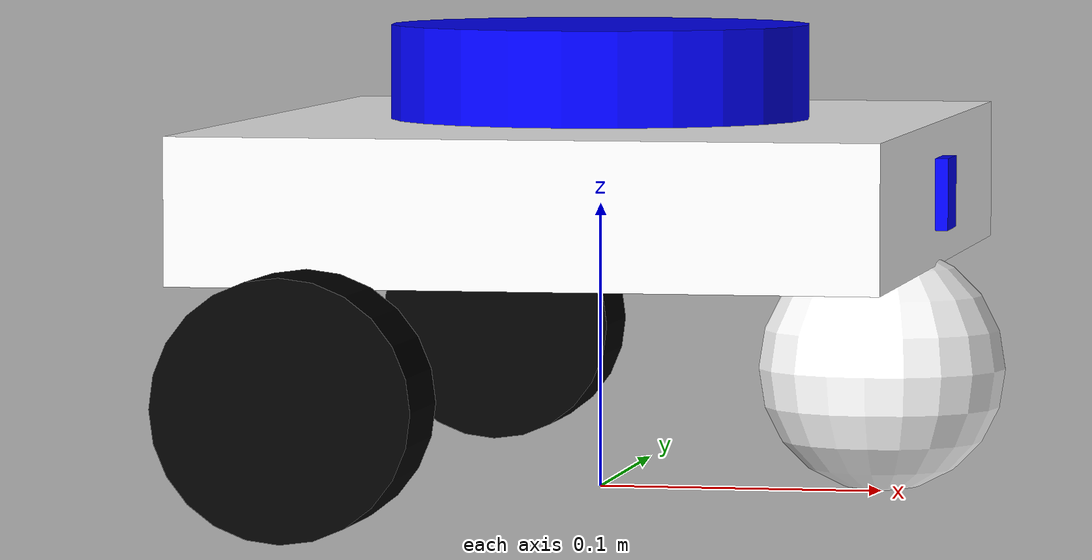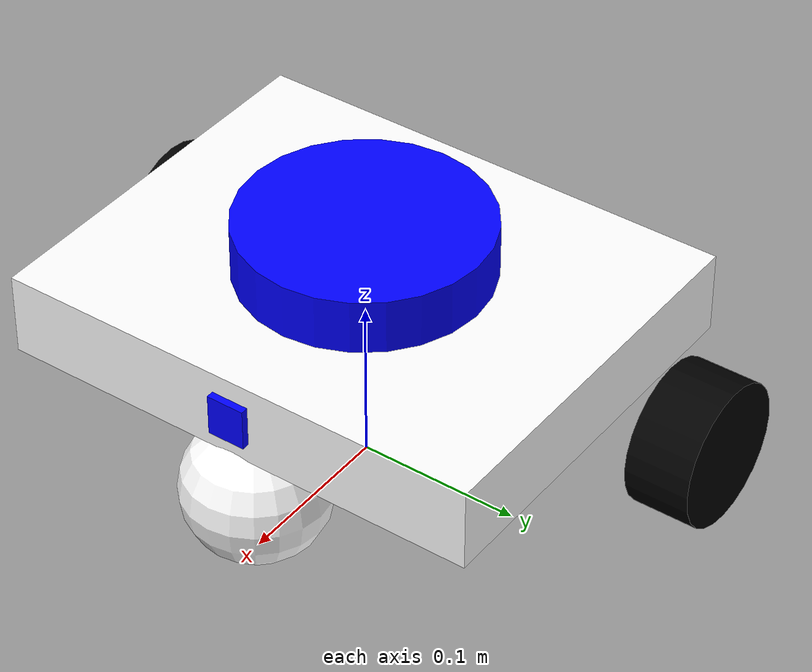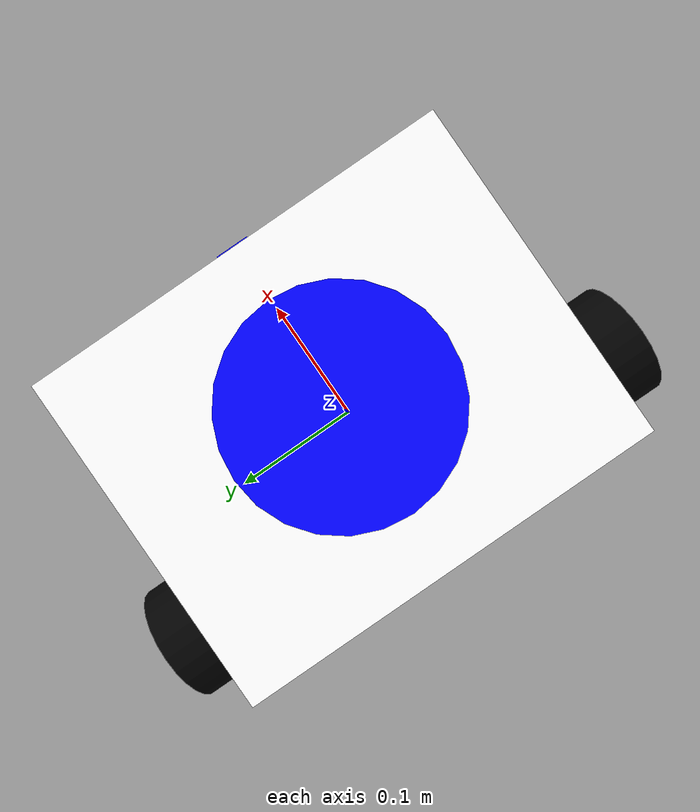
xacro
<?xml version="1.0"?>
<robot name="ddbot" xmlns:xacro="http://www.ros.org/wiki/xacro">

  <xacro:arg name="use_ros2_control" default="true"/>

  <xacro:include filename="ddbot_description.xacro" />

  <xacro:include filename="ddbot_lidar.xacro" />

  <xacro:include filename="ddbot_camera.xacro" />

  <xacro:if value="$(arg use_ros2_control)">
      <xacro:include filename="ddbot_control.xacro" />
  </xacro:if>
  <xacro:unless value="$(arg use_ros2_control)">
      <xacro:include filename="ddbot_gazebo.xacro" />
  </xacro:unless>

</robot>

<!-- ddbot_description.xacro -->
<robot xmlns:xacro="http://ros.org/wiki/xacro">

  <!-- COLOR -->
  <material name="white"> <color rgba="1 1 1 1" /> </material>
  <material name="black"> <color rgba="0 0 0 1" /> </material>
  <material name="blue">  <color rgba="0 0 1 1"/>  </material>

  <!-- Define robot constants -->
  <xacro:property name="base_width" value="0.3"/>
  <xacro:property name="base_length" value="0.24"/>
  <xacro:property name="base_height" value="0.05"/>
  <xacro:property name="base_zoff" value="0.105"/>

  <xacro:property name="wheel_radius" value="0.0435"/>
  <xacro:property name="wheel_width" value="0.04"/>
  <xacro:property name="wheel_ygap" value="0.025"/>
  <xacro:property name="wheel_zoff" value="0.0615"/>
  <xacro:property name="wheel_xoff" value="0.07"/>

  <xacro:property name="caster_xoff" value="0.1"/>

  <!-- Define some commonly used intertial properties  -->
  <!-- reference from nav2 urdf document  -->
  <xacro:macro name="box_inertia" params="m w h d">
    <inertial>
      <origin xyz="0 0 0" rpy="${pi/2} 0 ${pi/2}"/>
      <mass value="${m}"/>
      <inertia ixx="${(m/12) * (h*h + d*d)}" ixy="0.0" ixz="0.0" iyy="${(m/12) * (w*w + d*d)}" iyz="0.0" izz="${(m/12) * (w*w + h*h)}"/>
    </inertial>
  </xacro:macro>

  <xacro:macro name="cylinder_inertia" params="m r h">
    <inertial>
      <origin xyz="0 0 0" rpy="${pi/2} 0 0" />
      <mass value="${m}"/>
      <inertia ixx="${(m/12) * (3*r*r + h*h)}" ixy = "0.0" ixz = "0.0" iyy="${(m/12) * (3*r*r + h*h)}" iyz = "0.0" izz="${(m/2) * (r*r)}"/>
    </inertial>
  </xacro:macro>

  <xacro:macro name="sphere_inertia" params="m r">
    <inertial>
      <mass value="${m}"/>
      <inertia ixx="${(2/5) * m * (r*r)}" ixy="0.0" ixz="0.0" iyy="${(2/5) * m * (r*r)}" iyz="0.0" izz="${(2/5) * m * (r*r)}"/>
    </inertial>
  </xacro:macro>

  <!-- Robot Base -->
  <link name="base_link">

  </link>

  <!-- Robot Footprint -->
  <link name="base_footprint">
  </link>

  <joint name="base_footprint_joint" type="fixed">
    <parent link="base_link"/>
    <child link="base_footprint"/>
    <origin xyz="0.0 0.0 0.0" rpy="0 0 0"/>
  </joint>

  <!-- body link -->
  <link name="body_link">
    <visual>
        <geometry>
          <box size="${base_length} ${base_width} ${base_height}"/>
        </geometry>
        <material name="white"/>
    </visual>

    <collision>
      <geometry>
        <box size="${base_length} ${base_width} ${base_height}"/>
      </geometry>
    </collision>

    <xacro:box_inertia m="15" w="${base_width}" d="${base_length}" h="${base_height}"/>
  </link>

  <joint name="body_link_joint" type="fixed">
    <parent link="base_link"/>
    <child link="body_link"/>
    <origin xyz="0.0 0.0 ${base_zoff}" rpy="0 0 0"/>
  </joint>

  <gazebo reference="base_link"><material>Gazebo/White</material></gazebo>

  <!-- Wheels -->
  <xacro:macro name="wheel" params="prefix x_reflect y_reflect">
    <link name="${prefix}_link">
      <visual>
        <origin xyz="0 0 0" rpy="${pi/2} 0 0"/>
        <geometry>
          <cylinder radius="${wheel_radius}" length="${wheel_width}"/>
        </geometry>
        <material name="black"/>
      </visual>

      <collision>
        <origin xyz="0 0 0" rpy="${pi/2} 0 0"/>
        <geometry>
          <sphere radius="${wheel_radius}"/>
        </geometry>
      </collision>

      <xacro:cylinder_inertia m="0.5" r="${wheel_radius}" h="${wheel_width}"/>
    </link>

    <joint name="${prefix}_joint" type="continuous">
      <parent link="body_link"/>
      <child link="${prefix}_link"/>
      <origin xyz="${x_reflect*wheel_xoff} ${y_reflect*(base_width/2+wheel_ygap)} ${-wheel_zoff}" rpy="0 0 0"/>
      <axis xyz="0 1 0"/>
    </joint>
  </xacro:macro>

  <xacro:wheel prefix="left_wheel" x_reflect="-1" y_reflect="1" />
  <xacro:wheel prefix="right_wheel" x_reflect="-1" y_reflect="-1" />
  <gazebo reference="left_wheel_link"><material>Gazebo/Black</material></gazebo>
  <gazebo reference="right_wheel_link"><material>Gazebo/Black</material></gazebo>

  <!-- caster -->
  <link name="front_caster_link">
    <visual>
      <geometry>
        <sphere radius="${wheel_radius}"/>
      </geometry>
      <material name="white"/>
    </visual>

    <collision>
      <origin xyz="0 0 0" rpy="0 0 0"/>
      <geometry>
        <sphere radius="${wheel_radius}"/>
      </geometry>
    </collision>

    <xacro:sphere_inertia m="0.5" r="${wheel_radius}"/>
  </link>

  <joint name="caster_joint" type="fixed">
    <parent link="body_link"/>
    <child link="front_caster_link"/>
    <origin xyz="${caster_xoff} 0.0 ${(-wheel_zoff)}" rpy="0 0 0"/>
  </joint>

  <gazebo reference="front_caster_link">
        <material>Gazebo/White</material>
        <mu1 value="0.001"/>
        <mu2 value="0.001"/>
  </gazebo>

</robot>

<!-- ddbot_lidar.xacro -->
<robot name="ddbot" xmlns:xacro="http://www.ros.org/wiki/xacro">
  <!-- lidar -->
  <link name="lidar_link">
    <visual>
      <origin xyz="0 0 0" rpy="0 0 0"/>
      <geometry>
        <cylinder radius="0.0737" length="0.0425"/>
      </geometry>
      <material name="blue"/>
    </visual>

    <collision>
      <origin xyz="0 0 0" rpy="0 0 0"/>
      <geometry>
        <cylinder radius="0.0737" length="0.0425"/>
      </geometry>
    </collision>

    <xacro:cylinder_inertia m="0.5" r="0.0737" h="0.0425"/>
  </link>

  <joint name="lidar_joint" type="fixed">
    <parent link="body_link"/>
    <child link="lidar_link"/>
    <origin xyz="0 0 0.03685" rpy="0 0 0"/>
  </joint>

  <gazebo reference="lidar_link">
    <sensor name="lidar" type="ray">
      <visualize>false</visualize>
      <update_rate>10</update_rate>
      <ray>
        <scan>
          <horizontal>
            <samples>360</samples>
            <min_angle>-3.14</min_angle>
            <max_angle>3.14</max_angle>
          </horizontal>
        </scan>
      <range>
        <min>0.120000</min>
        <max>12.0</max>
      </range>
      </ray>
      <plugin name="scan" filename="libgazebo_ros_ray_sensor.so">
      <ros>
          <remapping>~/out:=scan</remapping>
      </ros>
      <output_type>sensor_msgs/LaserScan</output_type>
      <frame_name>lidar_link</frame_name>
  `    </plugin>
    </sensor>
  </gazebo>

</robot>

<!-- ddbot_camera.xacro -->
<robot name="ddbot" xmlns:xacro="http://www.ros.org/wiki/xacro">
  <!-- CAMERA LINK -->
  <link name="camera_link">
    <visual>
      <geometry>
        <box size="0.025 0.023 0.009"/>
      </geometry>
      <origin xyz="0 0 0" rpy="0 1.5708 0"/>
      <material name="blue"/>
    </visual>

    <collision>
      <geometry>
        <box size="0.025 0.023 0.009"/>
      </geometry>
    </collision>

    <xacro:box_inertia m="0.1" w="0.025" d="0.023" h="0.009"/>
  </link>

  <joint name="camera_joint" type="fixed">
      <parent link="body_link"/>
      <child link="camera_link"/>
      <origin xyz="0.12 0 0"/>
  </joint>

  <gazebo reference="camera_link">
    <material>Gazebo/Blue</material>
    <sensor name="camera" type="camera">
      <pose> 0 0 0 0 0 0 </pose>
      <visualize>true</visualize>
      <update_rate>10</update_rate>
      <camera>
        <horizontal_fov>1.089</horizontal_fov>
        <image>
          <format>R8G8B8</format>
          <width>640</width>
          <height>480</height>
        </image>
        <clip>
          <near>0.05</near>
          <far>8.0</far>
        </clip>
      </camera>
      <plugin name="camera_controller" filename="libgazebo_ros_camera.so">
          <frame_name>camera_link_optical</frame_name>
      </plugin>
    </sensor>
    </gazebo>

</robot>
